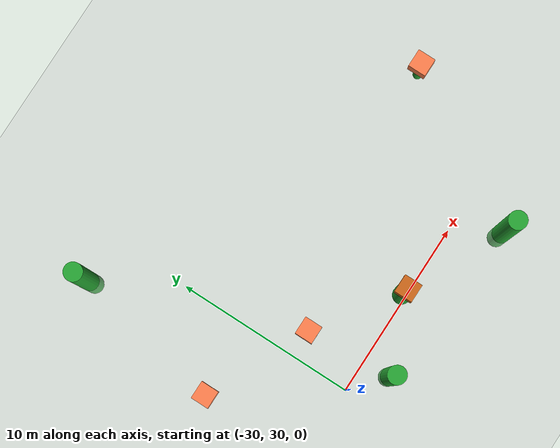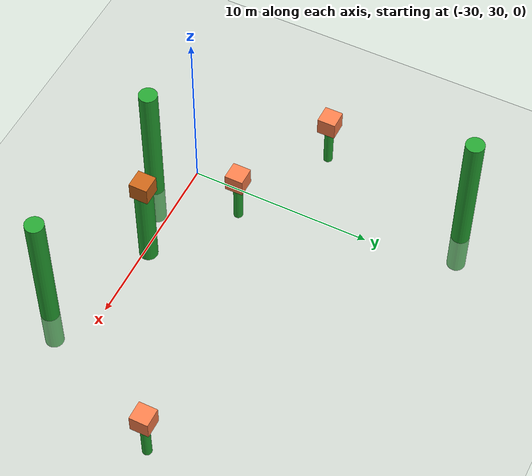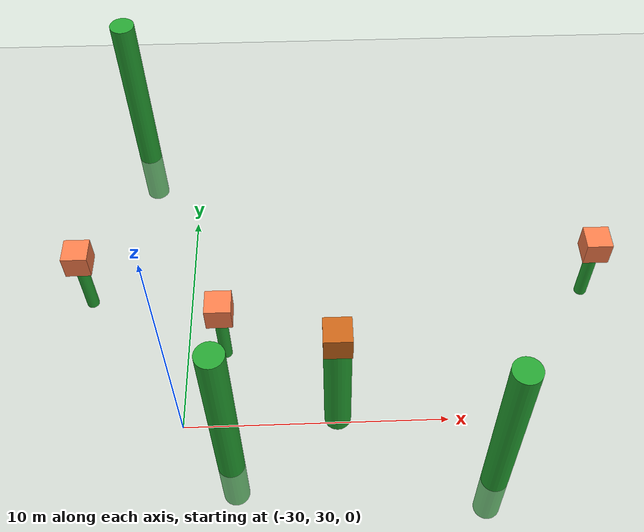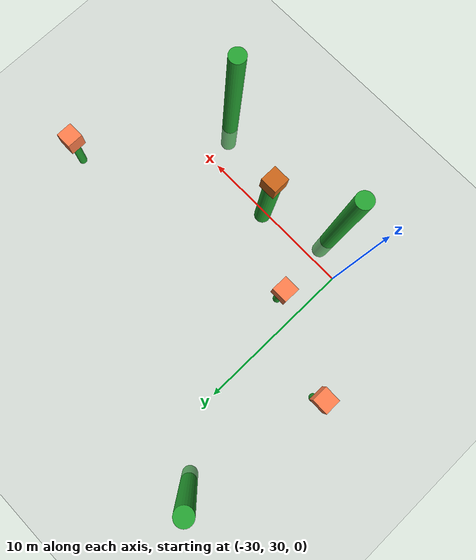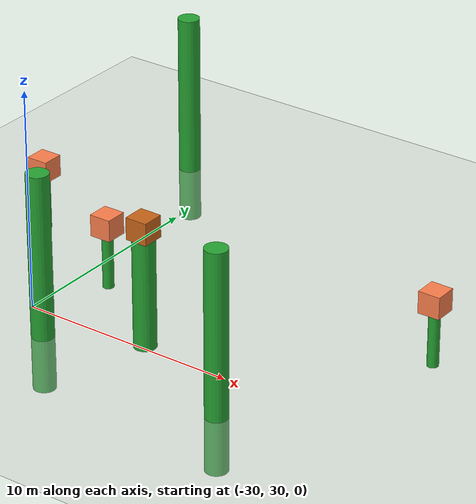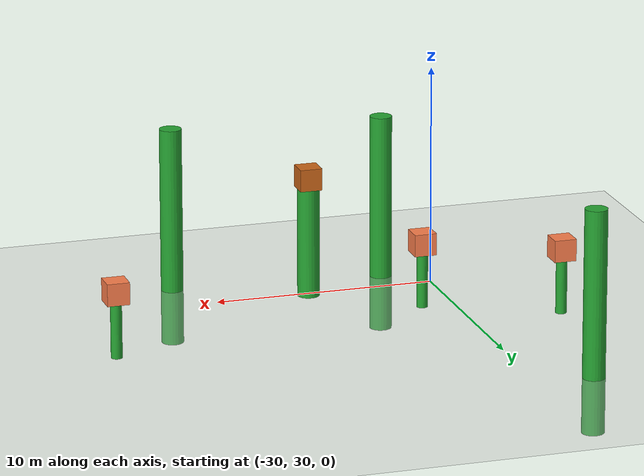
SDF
<sdf version="1.7">
 <world name="default">
  <model name="ground_plane">
   <static>1</static>
   <link name="link">
    <collision name="collision">
     <geometry><plane><normal>0 0 1</normal><size>100 100</size></plane></geometry>
     <surface>
      <contact><collide_bitmask>65535</collide_bitmask></contact>
      <friction><ode><mu>100</mu><mu2>50</mu2></ode></friction>
     </surface>
    </collision>
    <visual name="visual">
     <cast_shadows>0</cast_shadows>
     <geometry><plane><normal>0 0 1</normal><size>100 100</size></plane></geometry>
     <material>
      <script><uri>file://media/materials/scripts/gazebo.material</uri><name>Gazebo/Grey</name></script>
     </material>
    </visual>
   </link>
  </model>
  <model name="unit_cylinder_green_2_clone_clone_9">
   <link name="link">
    <inertial>
     <mass>1</mass>
     <inertia><ixx>0.145833</ixx><ixy>0</ixy><ixz>0</ixz><iyy>0.145833</iyy><iyz>0</iyz><izz>0.125</izz></inertia>
    </inertial>
    <visual name="visual">
     <geometry><cylinder><radius>0.5</radius><length>10</length></cylinder></geometry>
     <material>
      <script><name>Gazebo/Green</name><uri>file://media/materials/scripts/gazebo.material</uri></script>
      <shader type="pixel"><normal_map>__default__</normal_map></shader>
      <ambient>0 1 0.3 1</ambient>
      <diffuse>0.7 0.7 0.7 1</diffuse>
      <specular>0.01 0.01 0.01 1</specular>
      <emissive>0 0 0 1</emissive>
     </material>
    </visual>
    <collision name="collision">
     <geometry><cylinder><radius>0.5</radius><length>5</length></cylinder></geometry>
     <surface>
      <friction>
       <ode><mu>1</mu><mu2>1</mu2><fdir1>0 0 0</fdir1><slip1>0</slip1><slip2>0</slip2></ode>
       <torsional>
        <coefficient>1</coefficient>
        <patch_radius>0</patch_radius>
        <surface_radius>0</surface_radius>
        <use_patch_radius>1</use_patch_radius>
        <ode><slip>0</slip></ode>
       </torsional>
      </friction>
      <bounce><restitution_coefficient>0</restitution_coefficient><threshold>1e+06</threshold></bounce>
      <contact>
       <collide_without_contact>0</collide_without_contact>
       <collide_without_contact_bitmask>1</collide_without_contact_bitmask>
       <collide_bitmask>1</collide_bitmask>
       <ode>
        <soft_cfm>0</soft_cfm>
        <soft_erp>0.2</soft_erp>
        <kp>1e+13</kp>
        <kd>1</kd>
        <max_vel>0.01</max_vel>
        <min_depth>0</min_depth>
       </ode>
       <bullet>
        <split_impulse>1</split_impulse>
        <split_impulse_penetration_threshold>-0.01</split_impulse_penetration_threshold>
        <soft_cfm>0</soft_cfm>
        <soft_erp>0.2</soft_erp>
        <kp>1e+13</kp>
        <kd>1</kd>
       </bullet>
      </contact>
     </surface>
    </collision>
   </link>
   <static>1</static>
   <pose>-18.5936 27.5593 2.5 0 0 -0.000967</pose>
  </model>
  <model name="unit_cylinder_green_2_clone_clone_14">
   <link name="link">
    <inertial>
     <mass>1</mass>
     <inertia><ixx>0.145833</ixx><ixy>0</ixy><ixz>0</ixz><iyy>0.145833</iyy><iyz>0</iyz><izz>0.125</izz></inertia>
    </inertial>
    <visual name="visual">
     <geometry><cylinder><radius>0.5</radius><length>10</length></cylinder></geometry>
     <material>
      <script><name>Gazebo/Green</name><uri>file://media/materials/scripts/gazebo.material</uri></script>
      <shader type="pixel"><normal_map>__default__</normal_map></shader>
      <ambient>0 1 0.3 1</ambient>
      <diffuse>0.7 0.7 0.7 1</diffuse>
      <specular>0.01 0.01 0.01 1</specular>
      <emissive>0 0 0 1</emissive>
     </material>
    </visual>
    <collision name="collision">
     <geometry><cylinder><radius>0.5</radius><length>5</length></cylinder></geometry>
     <surface>
      <friction>
       <ode><mu>1</mu><mu2>1</mu2><fdir1>0 0 0</fdir1><slip1>0</slip1><slip2>0</slip2></ode>
       <torsional>
        <coefficient>1</coefficient>
        <patch_radius>0</patch_radius>
        <surface_radius>0</surface_radius>
        <use_patch_radius>1</use_patch_radius>
        <ode><slip>0</slip></ode>
       </torsional>
      </friction>
      <bounce><restitution_coefficient>0</restitution_coefficient><threshold>1e+06</threshold></bounce>
      <contact>
       <collide_without_contact>0</collide_without_contact>
       <collide_without_contact_bitmask>1</collide_without_contact_bitmask>
       <collide_bitmask>1</collide_bitmask>
       <ode>
        <soft_cfm>0</soft_cfm>
        <soft_erp>0.2</soft_erp>
        <kp>1e+13</kp>
        <kd>1</kd>
        <max_vel>0.01</max_vel>
        <min_depth>0</min_depth>
       </ode>
       <bullet>
        <split_impulse>1</split_impulse>
        <split_impulse_penetration_threshold>-0.01</split_impulse_penetration_threshold>
        <soft_cfm>0</soft_cfm>
        <soft_erp>0.2</soft_erp>
        <kp>1e+13</kp>
        <kd>1</kd>
       </bullet>
      </contact>
     </surface>
    </collision>
   </link>
   <static>1</static>
   <pose>-28.1415 28.4335 2.5 0 0 -0.000967</pose>
  </model>
  <model name="unit_cylinder_green_2_clone_clone_29">
   <link name="link">
    <inertial>
     <mass>1</mass>
     <inertia><ixx>0.145833</ixx><ixy>0</ixy><ixz>0</ixz><iyy>0.145833</iyy><iyz>0</iyz><izz>0.125</izz></inertia>
    </inertial>
    <visual name="visual">
     <geometry><cylinder><radius>0.5</radius><length>10</length></cylinder></geometry>
     <material>
      <script><name>Gazebo/Green</name><uri>file://media/materials/scripts/gazebo.material</uri></script>
      <shader type="pixel"><normal_map>__default__</normal_map></shader>
      <ambient>0 1 0.3 1</ambient>
      <diffuse>0.7 0.7 0.7 1</diffuse>
      <specular>0.01 0.01 0.01 1</specular>
      <emissive>0 0 0 1</emissive>
     </material>
    </visual>
    <collision name="collision">
     <geometry><cylinder><radius>0.5</radius><length>5</length></cylinder></geometry>
     <surface>
      <friction>
       <ode><mu>1</mu><mu2>1</mu2><fdir1>0 0 0</fdir1><slip1>0</slip1><slip2>0</slip2></ode>
       <torsional>
        <coefficient>1</coefficient>
        <patch_radius>0</patch_radius>
        <surface_radius>0</surface_radius>
        <use_patch_radius>1</use_patch_radius>
        <ode><slip>0</slip></ode>
       </torsional>
      </friction>
      <bounce><restitution_coefficient>0</restitution_coefficient><threshold>1e+06</threshold></bounce>
      <contact>
       <collide_without_contact>0</collide_without_contact>
       <collide_without_contact_bitmask>1</collide_without_contact_bitmask>
       <collide_bitmask>1</collide_bitmask>
       <ode>
        <soft_cfm>0</soft_cfm>
        <soft_erp>0.2</soft_erp>
        <kp>1e+13</kp>
        <kd>1</kd>
        <max_vel>0.01</max_vel>
        <min_depth>0</min_depth>
       </ode>
       <bullet>
        <split_impulse>1</split_impulse>
        <split_impulse_penetration_threshold>-0.01</split_impulse_penetration_threshold>
        <soft_cfm>0</soft_cfm>
        <soft_erp>0.2</soft_erp>
        <kp>1e+13</kp>
        <kd>1</kd>
       </bullet>
      </contact>
     </surface>
    </collision>
   </link>
   <static>1</static>
   <pose>-32.5198 44.3846 2.5 0 0 -0.000967</pose>
  </model>
  <model name="unit_cylinder_green_2_clone_clone_3_clone_0_clone_0_clone_17">
   <link name="link">
    <inertial>
     <mass>1</mass>
     <inertia><ixx>0.145833</ixx><ixy>0</ixy><ixz>0</ixz><iyy>0.145833</iyy><iyz>0</iyz><izz>0.125</izz></inertia>
    </inertial>
    <visual name="visual">
     <geometry><cylinder><radius>0.5</radius><length>5</length></cylinder></geometry>
     <material>
      <script><name>Gazebo/Green</name><uri>file://media/materials/scripts/gazebo.material</uri></script>
      <shader type="pixel"><normal_map>__default__</normal_map></shader>
      <ambient>0 1 0.3 1</ambient>
      <diffuse>0.7 0.7 0.7 1</diffuse>
      <specular>0.01 0.01 0.01 1</specular>
      <emissive>0 0 0 1</emissive>
     </material>
    </visual>
    <collision name="collision">
     <geometry><cylinder><radius>0.5</radius><length>5</length></cylinder></geometry>
     <surface>
      <friction>
       <ode><mu>1</mu><mu2>1</mu2><fdir1>0 0 0</fdir1><slip1>0</slip1><slip2>0</slip2></ode>
       <torsional>
        <coefficient>1</coefficient>
        <patch_radius>0</patch_radius>
        <surface_radius>0</surface_radius>
        <use_patch_radius>1</use_patch_radius>
        <ode><slip>0</slip></ode>
       </torsional>
      </friction>
      <bounce><restitution_coefficient>0</restitution_coefficient><threshold>1e+06</threshold></bounce>
      <contact>
       <collide_without_contact>0</collide_without_contact>
       <collide_without_contact_bitmask>1</collide_without_contact_bitmask>
       <collide_bitmask>1</collide_bitmask>
       <ode>
        <soft_cfm>0</soft_cfm>
        <soft_erp>0.2</soft_erp>
        <kp>1e+13</kp>
        <kd>1</kd>
        <max_vel>0.01</max_vel>
        <min_depth>0</min_depth>
       </ode>
       <bullet>
        <split_impulse>1</split_impulse>
        <split_impulse_penetration_threshold>-0.01</split_impulse_penetration_threshold>
        <soft_cfm>0</soft_cfm>
        <soft_erp>0.2</soft_erp>
        <kp>1e+13</kp>
        <kd>1</kd>
       </bullet>
      </contact>
     </surface>
    </collision>
   </link>
   <link name="link_3">
    <inertial>
     <mass>1</mass>
     <inertia>
      <ixx>0.166667</ixx>
      <ixy>0</ixy>
      <ixz>0</ixz>
      <iyy>0.166667</iyy>
      <iyz>0</iyz>
      <izz>0.166667</izz>
     </inertia>
    </inertial>
    <pose>0 0 3 0 -0 0.000935</pose>
    <visual name="visual">
     <geometry><box><size>1 1 1</size></box></geometry>
     <material>
      <lighting>1</lighting>
      <script><uri>file://media/materials/scripts/gazebo.material</uri><name>Gazebo/Grey</name></script>
      <shader type="pixel"><normal_map>__default__</normal_map></shader>
      <ambient>0.8 0.4 0.1 1</ambient>
      <diffuse>0.7 0.7 0.7 1</diffuse>
      <specular>0.01 0.01 0.01 1</specular>
      <emissive>0 0 0 1</emissive>
     </material>
    </visual>
    <collision name="collision">
     <geometry><box><size>1 1 1</size></box></geometry>
     <surface>
      <friction>
       <ode><mu>1</mu><mu2>1</mu2><fdir1>0 0 0</fdir1><slip1>0</slip1><slip2>0</slip2></ode>
       <torsional>
        <coefficient>1</coefficient>
        <patch_radius>0</patch_radius>
        <surface_radius>0</surface_radius>
        <use_patch_radius>1</use_patch_radius>
        <ode><slip>0</slip></ode>
       </torsional>
      </friction>
      <bounce><restitution_coefficient>0</restitution_coefficient><threshold>1e+06</threshold></bounce>
      <contact>
       <collide_without_contact>0</collide_without_contact>
       <collide_without_contact_bitmask>1</collide_without_contact_bitmask>
       <collide_bitmask>1</collide_bitmask>
       <ode>
        <soft_cfm>0</soft_cfm>
        <soft_erp>0.2</soft_erp>
        <kp>1e+13</kp>
        <kd>1</kd>
        <max_vel>0.01</max_vel>
        <min_depth>0</min_depth>
       </ode>
       <bullet>
        <split_impulse>1</split_impulse>
        <split_impulse_penetration_threshold>-0.01</split_impulse_penetration_threshold>
        <soft_cfm>0</soft_cfm>
        <soft_erp>0.2</soft_erp>
        <kp>1e+13</kp>
        <kd>1</kd>
       </bullet>
      </contact>
     </surface>
    </collision>
   </link>
   <static>1</static>
   <pose>-24.1852 30.2214 2.49999 0 0 -0.000935</pose>
  </model>
  <model name="unit_cylinder_green_2_clone_clone_3_clone_0_clone_0_clone_83">
   <link name="link">
    <inertial>
     <mass>1</mass>
     <inertia><ixx>0.145833</ixx><ixy>0</ixy><ixz>0</ixz><iyy>0.145833</iyy><iyz>0</iyz><izz>0.125</izz></inertia>
    </inertial>
    <pose>0 0 -1.25 0 -0 0</pose>
    <visual name="visual">
     <geometry><cylinder><radius>0.25</radius><length>2.5</length></cylinder></geometry>
     <material>
      <script><name>Gazebo/Green</name><uri>file://media/materials/scripts/gazebo.material</uri></script>
      <shader type="pixel"><normal_map>__default__</normal_map></shader>
      <ambient>0 1 0.3 1</ambient>
      <diffuse>0.7 0.7 0.7 1</diffuse>
      <specular>0.01 0.01 0.01 1</specular>
      <emissive>0 0 0 1</emissive>
     </material>
    </visual>
    <collision name="collision">
     <geometry><cylinder><radius>0.5</radius><length>5</length></cylinder></geometry>
     <surface>
      <friction>
       <ode><mu>1</mu><mu2>1</mu2><fdir1>0 0 0</fdir1><slip1>0</slip1><slip2>0</slip2></ode>
       <torsional>
        <coefficient>1</coefficient>
        <patch_radius>0</patch_radius>
        <surface_radius>0</surface_radius>
        <use_patch_radius>1</use_patch_radius>
        <ode><slip>0</slip></ode>
       </torsional>
      </friction>
      <bounce><restitution_coefficient>0</restitution_coefficient><threshold>1e+06</threshold></bounce>
      <contact>
       <collide_without_contact>0</collide_without_contact>
       <collide_without_contact_bitmask>1</collide_without_contact_bitmask>
       <collide_bitmask>1</collide_bitmask>
       <ode>
        <soft_cfm>0</soft_cfm>
        <soft_erp>0.2</soft_erp>
        <kp>1e+13</kp>
        <kd>1</kd>
        <max_vel>0.01</max_vel>
        <min_depth>0</min_depth>
       </ode>
       <bullet>
        <split_impulse>1</split_impulse>
        <split_impulse_penetration_threshold>-0.01</split_impulse_penetration_threshold>
        <soft_cfm>0</soft_cfm>
        <soft_erp>0.2</soft_erp>
        <kp>1e+13</kp>
        <kd>1</kd>
       </bullet>
      </contact>
     </surface>
    </collision>
   </link>
   <link name="link_3">
    <inertial>
     <mass>1</mass>
     <inertia>
      <ixx>0.166667</ixx>
      <ixy>0</ixy>
      <ixz>0</ixz>
      <iyy>0.166667</iyy>
      <iyz>0</iyz>
      <izz>0.166667</izz>
     </inertia>
    </inertial>
    <pose>0 0 0.5 0 -0 0.000935</pose>
    <visual name="visual">
     <geometry><box><size>1 1 1</size></box></geometry>
     <material>
      <lighting>1</lighting>
      <script><uri>file://media/materials/scripts/gazebo.material</uri><name>Gazebo/Grey</name></script>
      <shader type="pixel"><normal_map>__default__</normal_map></shader>
      <ambient>1 0.5 0.3 1</ambient>
      <diffuse>0.7 0.7 0.7 1</diffuse>
      <specular>0.01 0.01 0.01 1</specular>
      <emissive>0 0 0 1</emissive>
     </material>
    </visual>
    <collision name="collision">
     <geometry><box><size>1 1 1</size></box></geometry>
     <surface>
      <friction>
       <ode><mu>1</mu><mu2>1</mu2><fdir1>0 0 0</fdir1><slip1>0</slip1><slip2>0</slip2></ode>
       <torsional>
        <coefficient>1</coefficient>
        <patch_radius>0</patch_radius>
        <surface_radius>0</surface_radius>
        <use_patch_radius>1</use_patch_radius>
        <ode><slip>0</slip></ode>
       </torsional>
      </friction>
      <bounce><restitution_coefficient>0</restitution_coefficient><threshold>1e+06</threshold></bounce>
      <contact>
       <collide_without_contact>0</collide_without_contact>
       <collide_without_contact_bitmask>1</collide_without_contact_bitmask>
       <collide_bitmask>1</collide_bitmask>
       <ode>
        <soft_cfm>0</soft_cfm>
        <soft_erp>0.2</soft_erp>
        <kp>1e+13</kp>
        <kd>1</kd>
        <max_vel>0.01</max_vel>
        <min_depth>0</min_depth>
       </ode>
       <bullet>
        <split_impulse>1</split_impulse>
        <split_impulse_penetration_threshold>-0.01</split_impulse_penetration_threshold>
        <soft_cfm>0</soft_cfm>
        <soft_erp>0.2</soft_erp>
        <kp>1e+13</kp>
        <kd>1</kd>
       </bullet>
      </contact>
     </surface>
    </collision>
   </link>
   <static>1</static>
   <pose>-34.1204 35.9064 2.49999 0 0 -0.000935</pose>
  </model>
  <model name="unit_cylinder_green_2_clone_clone_3_clone_0_clone_0_clone_90">
   <link name="link">
    <inertial>
     <mass>1</mass>
     <inertia><ixx>0.145833</ixx><ixy>0</ixy><ixz>0</ixz><iyy>0.145833</iyy><iyz>0</iyz><izz>0.125</izz></inertia>
    </inertial>
    <pose>0 0 -1.25 0 -0 0</pose>
    <visual name="visual">
     <geometry><cylinder><radius>0.25</radius><length>2.5</length></cylinder></geometry>
     <material>
      <script><name>Gazebo/Green</name><uri>file://media/materials/scripts/gazebo.material</uri></script>
      <shader type="pixel"><normal_map>__default__</normal_map></shader>
      <ambient>0 1 0.3 1</ambient>
      <diffuse>0.7 0.7 0.7 1</diffuse>
      <specular>0.01 0.01 0.01 1</specular>
      <emissive>0 0 0 1</emissive>
     </material>
    </visual>
    <collision name="collision">
     <geometry><cylinder><radius>0.5</radius><length>5</length></cylinder></geometry>
     <surface>
      <friction>
       <ode><mu>1</mu><mu2>1</mu2><fdir1>0 0 0</fdir1><slip1>0</slip1><slip2>0</slip2></ode>
       <torsional>
        <coefficient>1</coefficient>
        <patch_radius>0</patch_radius>
        <surface_radius>0</surface_radius>
        <use_patch_radius>1</use_patch_radius>
        <ode><slip>0</slip></ode>
       </torsional>
      </friction>
      <bounce><restitution_coefficient>0</restitution_coefficient><threshold>1e+06</threshold></bounce>
      <contact>
       <collide_without_contact>0</collide_without_contact>
       <collide_without_contact_bitmask>1</collide_without_contact_bitmask>
       <collide_bitmask>1</collide_bitmask>
       <ode>
        <soft_cfm>0</soft_cfm>
        <soft_erp>0.2</soft_erp>
        <kp>1e+13</kp>
        <kd>1</kd>
        <max_vel>0.01</max_vel>
        <min_depth>0</min_depth>
       </ode>
       <bullet>
        <split_impulse>1</split_impulse>
        <split_impulse_penetration_threshold>-0.01</split_impulse_penetration_threshold>
        <soft_cfm>0</soft_cfm>
        <soft_erp>0.2</soft_erp>
        <kp>1e+13</kp>
        <kd>1</kd>
       </bullet>
      </contact>
     </surface>
    </collision>
   </link>
   <link name="link_3">
    <inertial>
     <mass>1</mass>
     <inertia>
      <ixx>0.166667</ixx>
      <ixy>0</ixy>
      <ixz>0</ixz>
      <iyy>0.166667</iyy>
      <iyz>0</iyz>
      <izz>0.166667</izz>
     </inertia>
    </inertial>
    <pose>0 0 0.5 0 -0 0.000935</pose>
    <visual name="visual">
     <geometry><box><size>1 1 1</size></box></geometry>
     <material>
      <lighting>1</lighting>
      <script><uri>file://media/materials/scripts/gazebo.material</uri><name>Gazebo/Grey</name></script>
      <shader type="pixel"><normal_map>__default__</normal_map></shader>
      <ambient>1 0.5 0.3 1</ambient>
      <diffuse>0.7 0.7 0.7 1</diffuse>
      <specular>0.01 0.01 0.01 1</specular>
      <emissive>0 0 0 1</emissive>
     </material>
    </visual>
    <collision name="collision">
     <geometry><box><size>1 1 1</size></box></geometry>
     <surface>
      <friction>
       <ode><mu>1</mu><mu2>1</mu2><fdir1>0 0 0</fdir1><slip1>0</slip1><slip2>0</slip2></ode>
       <torsional>
        <coefficient>1</coefficient>
        <patch_radius>0</patch_radius>
        <surface_radius>0</surface_radius>
        <use_patch_radius>1</use_patch_radius>
        <ode><slip>0</slip></ode>
       </torsional>
      </friction>
      <bounce><restitution_coefficient>0</restitution_coefficient><threshold>1e+06</threshold></bounce>
      <contact>
       <collide_without_contact>0</collide_without_contact>
       <collide_without_contact_bitmask>1</collide_without_contact_bitmask>
       <collide_bitmask>1</collide_bitmask>
       <ode>
        <soft_cfm>0</soft_cfm>
        <soft_erp>0.2</soft_erp>
        <kp>1e+13</kp>
        <kd>1</kd>
        <max_vel>0.01</max_vel>
        <min_depth>0</min_depth>
       </ode>
       <bullet>
        <split_impulse>1</split_impulse>
        <split_impulse_penetration_threshold>-0.01</split_impulse_penetration_threshold>
        <soft_cfm>0</soft_cfm>
        <soft_erp>0.2</soft_erp>
        <kp>1e+13</kp>
        <kd>1</kd>
       </bullet>
      </contact>
     </surface>
    </collision>
   </link>
   <static>1</static>
   <pose>-28.5212 33.2753 2.49999 0 0 -0.000935</pose>
  </model>
  <model name="unit_cylinder_green_2_clone_clone_3_clone_0_clone_0_clone_91">
   <link name="link">
    <inertial>
     <mass>1</mass>
     <inertia><ixx>0.145833</ixx><ixy>0</ixy><ixz>0</ixz><iyy>0.145833</iyy><iyz>0</iyz><izz>0.125</izz></inertia>
    </inertial>
    <pose>0 0 -1.25 0 -0 0</pose>
    <visual name="visual">
     <geometry><cylinder><radius>0.25</radius><length>2.5</length></cylinder></geometry>
     <material>
      <script><name>Gazebo/Green</name><uri>file://media/materials/scripts/gazebo.material</uri></script>
      <shader type="pixel"><normal_map>__default__</normal_map></shader>
      <ambient>0 1 0.3 1</ambient>
      <diffuse>0.7 0.7 0.7 1</diffuse>
      <specular>0.01 0.01 0.01 1</specular>
      <emissive>0 0 0 1</emissive>
     </material>
    </visual>
    <collision name="collision">
     <geometry><cylinder><radius>0.5</radius><length>5</length></cylinder></geometry>
     <surface>
      <friction>
       <ode><mu>1</mu><mu2>1</mu2><fdir1>0 0 0</fdir1><slip1>0</slip1><slip2>0</slip2></ode>
       <torsional>
        <coefficient>1</coefficient>
        <patch_radius>0</patch_radius>
        <surface_radius>0</surface_radius>
        <use_patch_radius>1</use_patch_radius>
        <ode><slip>0</slip></ode>
       </torsional>
      </friction>
      <bounce><restitution_coefficient>0</restitution_coefficient><threshold>1e+06</threshold></bounce>
      <contact>
       <collide_without_contact>0</collide_without_contact>
       <collide_without_contact_bitmask>1</collide_without_contact_bitmask>
       <collide_bitmask>1</collide_bitmask>
       <ode>
        <soft_cfm>0</soft_cfm>
        <soft_erp>0.2</soft_erp>
        <kp>1e+13</kp>
        <kd>1</kd>
        <max_vel>0.01</max_vel>
        <min_depth>0</min_depth>
       </ode>
       <bullet>
        <split_impulse>1</split_impulse>
        <split_impulse_penetration_threshold>-0.01</split_impulse_penetration_threshold>
        <soft_cfm>0</soft_cfm>
        <soft_erp>0.2</soft_erp>
        <kp>1e+13</kp>
        <kd>1</kd>
       </bullet>
      </contact>
     </surface>
    </collision>
   </link>
   <link name="link_3">
    <inertial>
     <mass>1</mass>
     <inertia>
      <ixx>0.166667</ixx>
      <ixy>0</ixy>
      <ixz>0</ixz>
      <iyy>0.166667</iyy>
      <iyz>0</iyz>
      <izz>0.166667</izz>
     </inertia>
    </inertial>
    <pose>0 0 0.5 0 -0 0.000935</pose>
    <visual name="visual">
     <geometry><box><size>1 1 1</size></box></geometry>
     <material>
      <lighting>1</lighting>
      <script><uri>file://media/materials/scripts/gazebo.material</uri><name>Gazebo/Grey</name></script>
      <shader type="pixel"><normal_map>__default__</normal_map></shader>
      <ambient>1 0.5 0.3 1</ambient>
      <diffuse>0.7 0.7 0.7 1</diffuse>
      <specular>0.01 0.01 0.01 1</specular>
      <emissive>0 0 0 1</emissive>
     </material>
    </visual>
    <collision name="collision">
     <geometry><box><size>1 1 1</size></box></geometry>
     <surface>
      <friction>
       <ode><mu>1</mu><mu2>1</mu2><fdir1>0 0 0</fdir1><slip1>0</slip1><slip2>0</slip2></ode>
       <torsional>
        <coefficient>1</coefficient>
        <patch_radius>0</patch_radius>
        <surface_radius>0</surface_radius>
        <use_patch_radius>1</use_patch_radius>
        <ode><slip>0</slip></ode>
       </torsional>
      </friction>
      <bounce><restitution_coefficient>0</restitution_coefficient><threshold>1e+06</threshold></bounce>
      <contact>
       <collide_without_contact>0</collide_without_contact>
       <collide_without_contact_bitmask>1</collide_without_contact_bitmask>
       <collide_bitmask>1</collide_bitmask>
       <ode>
        <soft_cfm>0</soft_cfm>
        <soft_erp>0.2</soft_erp>
        <kp>1e+13</kp>
        <kd>1</kd>
        <max_vel>0.01</max_vel>
        <min_depth>0</min_depth>
       </ode>
       <bullet>
        <split_impulse>1</split_impulse>
        <split_impulse_penetration_threshold>-0.01</split_impulse_penetration_threshold>
        <soft_cfm>0</soft_cfm>
        <soft_erp>0.2</soft_erp>
        <kp>1e+13</kp>
        <kd>1</kd>
       </bullet>
      </contact>
     </surface>
    </collision>
   </link>
   <static>1</static>
   <pose>-13.8342 35.8586 2.49999 0 0 -0.000935</pose>
  </model>
 </world>
</sdf>
